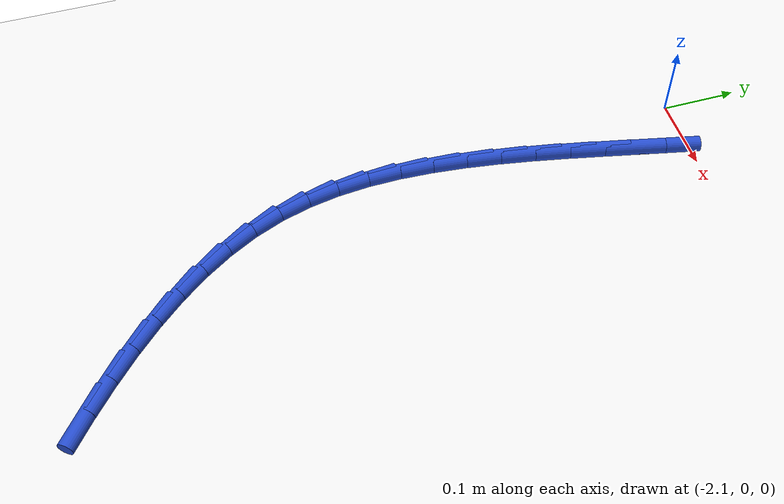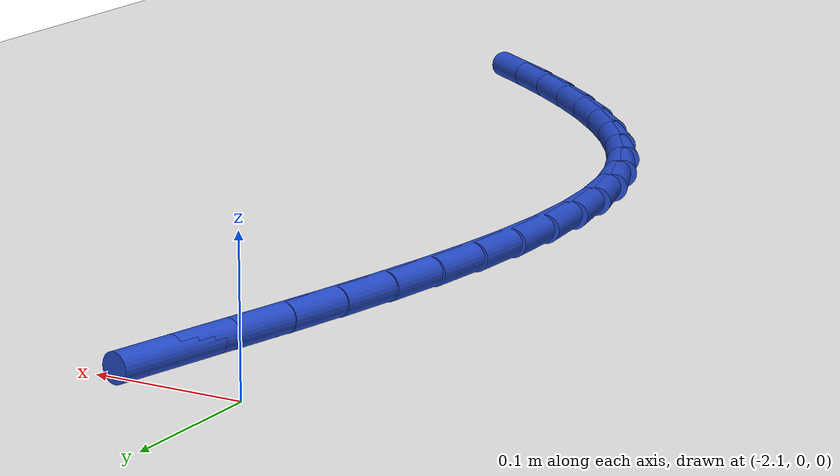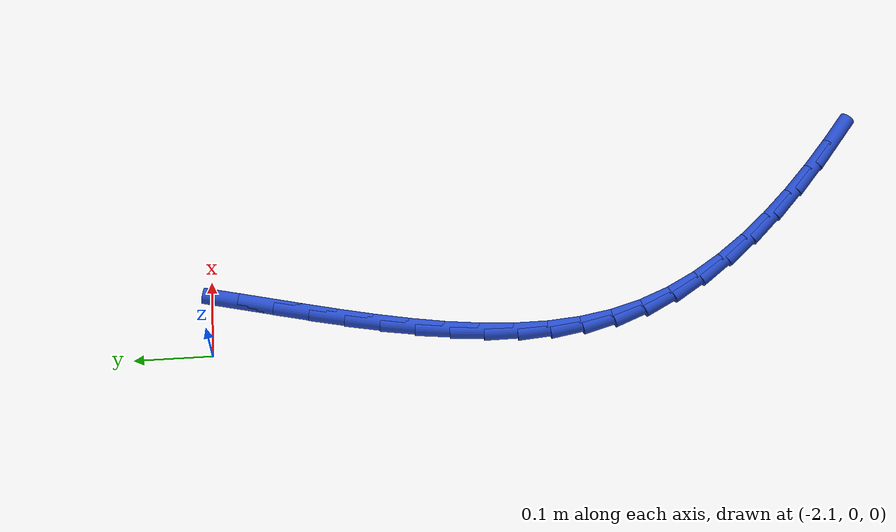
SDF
<sdf version="1.6">
 <world name="default">
  <model name="ground_plane">
   <static>1</static>
   <link name="link">
    <collision name="collision">
     <geometry><plane><normal>0 0 1</normal><size>100 100</size></plane></geometry>
     <surface><friction><ode><mu>100</mu><mu2>50</mu2></ode></friction></surface>
    </collision>
    <visual name="visual">
     <cast_shadows>0</cast_shadows>
     <geometry><plane><normal>0 0 1</normal><size>100 100</size></plane></geometry>
     <material>
      <script><uri>file://media/materials/scripts/gazebo.material</uri><name>Gazebo/WhiteGlow</name></script>
     </material>
    </visual>
   </link>
  </model>
  <model name="line">
   <link name="link_80">
    <pose>-2.0293124782093743 -0.02816084871861979 0.01 0 1.57 1.3481426955516702</pose>
    <collision name="collision">
     <geometry><cylinder><radius>0.01</radius><length>0.08</length></cylinder></geometry>
    </collision>
    <visual name="visual">
     <material>
      <script><name>Gazebo/Blue</name><uri>file://media/materials/scripts/gazebo.material</uri></script>
     </material>
     <geometry><cylinder><radius>0.01</radius><length>0.08</length></cylinder></geometry>
    </visual>
   </link>
   <link name="link_81">
    <pose>-2.0394066129815727 -0.07274479038804012 0.01 0 1.57 1.3470862220919497</pose>
    <collision name="collision">
     <geometry><cylinder><radius>0.01</radius><length>0.08</length></cylinder></geometry>
    </collision>
    <visual name="visual">
     <material>
      <script><name>Gazebo/Blue</name><uri>file://media/materials/scripts/gazebo.material</uri></script>
     </material>
     <geometry><cylinder><radius>0.01</radius><length>0.08</length></cylinder></geometry>
    </visual>
   </link>
   <link name="link_82">
    <pose>-2.049572230587281 -0.11742522876164195 0.01 0 1.57 1.3539636078560864</pose>
    <collision name="collision">
     <geometry><cylinder><radius>0.01</radius><length>0.08</length></cylinder></geometry>
    </collision>
    <visual name="visual">
     <material>
      <script><name>Gazebo/Blue</name><uri>file://media/materials/scripts/gazebo.material</uri></script>
     </material>
     <geometry><cylinder><radius>0.01</radius><length>0.08</length></cylinder></geometry>
    </visual>
   </link>
   <link name="link_83">
    <pose>-2.059407690191629 -0.16207177289300326 0.01 0 1.57 1.3689257299877533</pose>
    <collision name="collision">
     <geometry><cylinder><radius>0.01</radius><length>0.08</length></cylinder></geometry>
    </collision>
    <visual name="visual">
     <material>
      <script><name>Gazebo/Blue</name><uri>file://media/materials/scripts/gazebo.material</uri></script>
     </material>
     <geometry><cylinder><radius>0.01</radius><length>0.08</length></cylinder></geometry>
    </visual>
   </link>
   <link name="link_84">
    <pose>-2.068511350959745 -0.2065540318357043 0.01 0 1.57 1.3923426829691607</pose>
    <collision name="collision">
     <geometry><cylinder><radius>0.01</radius><length>0.08</length></cylinder></geometry>
    </collision>
    <visual name="visual">
     <material>
      <script><name>Gazebo/Blue</name><uri>file://media/materials/scripts/gazebo.material</uri></script>
     </material>
     <geometry><cylinder><radius>0.01</radius><length>0.08</length></cylinder></geometry>
    </visual>
   </link>
   <link name="link_85">
    <pose>-2.076481572056759 -0.2507416146433247 0.01 0 1.57 1.4247957778664107</pose>
    <collision name="collision">
     <geometry><cylinder><radius>0.01</radius><length>0.08</length></cylinder></geometry>
    </collision>
    <visual name="visual">
     <material>
      <script><name>Gazebo/Blue</name><uri>file://media/materials/scripts/gazebo.material</uri></script>
     </material>
     <geometry><cylinder><radius>0.01</radius><length>0.08</length></cylinder></geometry>
    </visual>
   </link>
   <link name="link_86">
    <pose>-2.0829167126478 -0.294504130369444 0.01 0 1.57 1.4670570119268702</pose>
    <collision name="collision">
     <geometry><cylinder><radius>0.01</radius><length>0.08</length></cylinder></geometry>
    </collision>
    <visual name="visual">
     <material>
      <script><name>Gazebo/Blue</name><uri>file://media/materials/scripts/gazebo.material</uri></script>
     </material>
     <geometry><cylinder><radius>0.01</radius><length>0.08</length></cylinder></geometry>
    </visual>
   </link>
   <link name="link_87">
    <pose>-2.0874151318979957 -0.3377111880676423 0.01 0 1.57 1.5200404349470862</pose>
    <collision name="collision">
     <geometry><cylinder><radius>0.01</radius><length>0.08</length></cylinder></geometry>
    </collision>
    <visual name="visual">
     <material>
      <script><name>Gazebo/Blue</name><uri>file://media/materials/scripts/gazebo.material</uri></script>
     </material>
     <geometry><cylinder><radius>0.01</radius><length>0.08</length></cylinder></geometry>
    </visual>
   </link>
   <link name="link_88">
    <pose>-2.0895751889724776 -0.3802323967914977 0.01 0 1.57 -1.5568913036090823</pose>
    <collision name="collision">
     <geometry><cylinder><radius>0.01</radius><length>0.08</length></cylinder></geometry>
    </collision>
    <visual name="visual">
     <material>
      <script><name>Gazebo/Blue</name><uri>file://media/materials/scripts/gazebo.material</uri></script>
     </material>
     <geometry><cylinder><radius>0.01</radius><length>0.08</length></cylinder></geometry>
    </visual>
   </link>
   <link name="link_89">
    <pose>-2.0889952430363734 -0.42193736559459055 0.01 0 1.57 -1.4797401463115878</pose>
    <collision name="collision">
     <geometry><cylinder><radius>0.01</radius><length>0.08</length></cylinder></geometry>
    </collision>
    <visual name="visual">
     <material>
      <script><name>Gazebo/Blue</name><uri>file://media/materials/scripts/gazebo.material</uri></script>
     </material>
     <geometry><cylinder><radius>0.01</radius><length>0.08</length></cylinder></geometry>
    </visual>
   </link>
   <link name="link_90">
    <pose>-2.085273653254812 -0.46269570353050016 0.01 0 1.57 -1.3897211929305038</pose>
    <collision name="collision">
     <geometry><cylinder><radius>0.01</radius><length>0.08</length></cylinder></geometry>
    </collision>
    <visual name="visual">
     <material>
      <script><name>Gazebo/Blue</name><uri>file://media/materials/scripts/gazebo.material</uri></script>
     </material>
     <geometry><cylinder><radius>0.01</radius><length>0.08</length></cylinder></geometry>
    </visual>
   </link>
   <link name="link_91">
    <pose>-2.078008778792923 -0.5023770196528062 0.01 0 1.57 -1.2872838228690762</pose>
    <collision name="collision">
     <geometry><cylinder><radius>0.01</radius><length>0.08</length></cylinder></geometry>
    </collision>
    <visual name="visual">
     <material>
      <script><name>Gazebo/Blue</name><uri>file://media/materials/scripts/gazebo.material</uri></script>
     </material>
     <geometry><cylinder><radius>0.01</radius><length>0.08</length></cylinder></geometry>
    </visual>
   </link>
   <link name="link_92">
    <pose>-2.0667989788158363 -0.540850923015089 0.01 0 1.57 -1.175767365612983</pose>
    <collision name="collision">
     <geometry><cylinder><radius>0.01</radius><length>0.08</length></cylinder></geometry>
    </collision>
    <visual name="visual">
     <material>
      <script><name>Gazebo/Blue</name><uri>file://media/materials/scripts/gazebo.material</uri></script>
     </material>
     <geometry><cylinder><radius>0.01</radius><length>0.08</length></cylinder></geometry>
    </visual>
   </link>
   <link name="link_93">
    <pose>-2.0513095064105062 -0.5780007668909072 0.01 0 1.57 -1.0703043913384251</pose>
    <collision name="collision">
     <geometry><cylinder><radius>0.01</radius><length>0.08</length></cylinder></geometry>
    </collision>
    <visual name="visual">
     <material>
      <script><name>Gazebo/Blue</name><uri>file://media/materials/scripts/gazebo.material</uri></script>
     </material>
     <geometry><cylinder><radius>0.01</radius><length>0.08</length></cylinder></geometry>
    </visual>
   </link>
   <link name="link_94">
    <pose>-2.031720805058524 -0.6138157570725935 0.01 0 1.57 -0.9776801583377986</pose>
    <collision name="collision">
     <geometry><cylinder><radius>0.01</radius><length>0.08</length></cylinder></geometry>
    </collision>
    <visual name="visual">
     <material>
      <script><name>Gazebo/Blue</name><uri>file://media/materials/scripts/gazebo.material</uri></script>
     </material>
     <geometry><cylinder><radius>0.01</radius><length>0.08</length></cylinder></geometry>
    </visual>
   </link>
   <link name="link_95">
    <pose>-2.0084526270453464 -0.6483342684362153 0.01 0 1.57 -0.8975597649315912</pose>
    <collision name="collision">
     <geometry><cylinder><radius>0.01</radius><length>0.08</length></cylinder></geometry>
    </collision>
    <visual name="visual">
     <material>
      <script><name>Gazebo/Blue</name><uri>file://media/materials/scripts/gazebo.material</uri></script>
     </material>
     <geometry><cylinder><radius>0.01</radius><length>0.08</length></cylinder></geometry>
    </visual>
   </link>
   <link name="link_96">
    <pose>-1.9819260456106955 -0.6815949472649503 0.01 0 1.57 -0.828975530635301</pose>
    <collision name="collision">
     <geometry><cylinder><radius>0.01</radius><length>0.08</length></cylinder></geometry>
    </collision>
    <visual name="visual">
     <material>
      <script><name>Gazebo/Blue</name><uri>file://media/materials/scripts/gazebo.material</uri></script>
     </material>
     <geometry><cylinder><radius>0.01</radius><length>0.08</length></cylinder></geometry>
    </visual>
   </link>
   <link name="link_97">
    <pose>-1.9525621339942951 -0.7136364398419752 0.01 0 1.57 -0.7707248950821595</pose>
    <collision name="collision">
     <geometry><cylinder><radius>0.01</radius><length>0.08</length></cylinder></geometry>
    </collision>
    <visual name="visual">
     <material>
      <script><name>Gazebo/Blue</name><uri>file://media/materials/scripts/gazebo.material</uri></script>
     </material>
     <geometry><cylinder><radius>0.01</radius><length>0.08</length></cylinder></geometry>
    </visual>
   </link>
   <link name="link_98">
    <pose>-1.9207819654358664 -0.7444973924504679 0.01 0 1.57 -0.7216006014392233</pose>
    <collision name="collision">
     <geometry><cylinder><radius>0.01</radius><length>0.08</length></cylinder></geometry>
    </collision>
    <visual name="visual">
     <material>
      <script><name>Gazebo/Blue</name><uri>file://media/materials/scripts/gazebo.material</uri></script>
     </material>
     <geometry><cylinder><radius>0.01</radius><length>0.08</length></cylinder></geometry>
    </visual>
   </link>
   <link name="link_99">
    <pose>-1.8870066131751309 -0.7742164513736053 0.01 0 1.57 -0.6805140434316105</pose>
    <collision name="collision">
     <geometry><cylinder><radius>0.01</radius><length>0.08</length></cylinder></geometry>
    </collision>
    <visual name="visual">
     <material>
      <script><name>Gazebo/Blue</name><uri>file://media/materials/scripts/gazebo.material</uri></script>
     </material>
     <geometry><cylinder><radius>0.01</radius><length>0.08</length></cylinder></geometry>
    </visual>
   </link>
   <link name="link_100">
    <pose>-1.8516571504518118 -0.8028322628945653 0.01 0 1.57 -0.6465507393989818</pose>
    <collision name="collision">
     <geometry><cylinder><radius>0.01</radius><length>0.08</length></cylinder></geometry>
    </collision>
    <visual name="visual">
     <material>
      <script><name>Gazebo/Blue</name><uri>file://media/materials/scripts/gazebo.material</uri></script>
     </material>
     <geometry><cylinder><radius>0.01</radius><length>0.08</length></cylinder></geometry>
    </visual>
   </link>
  </model>
 </world>
</sdf>
